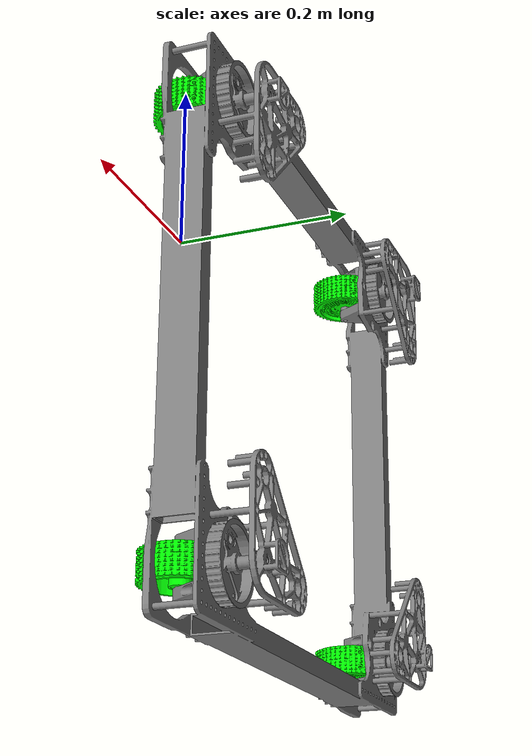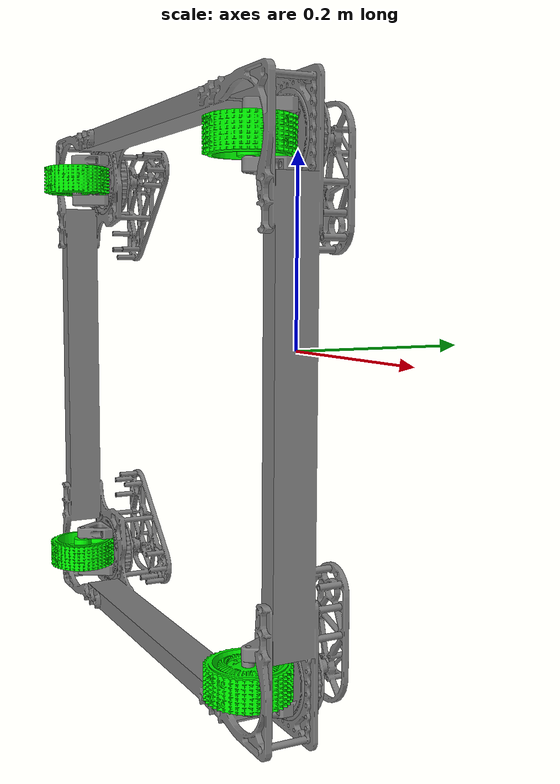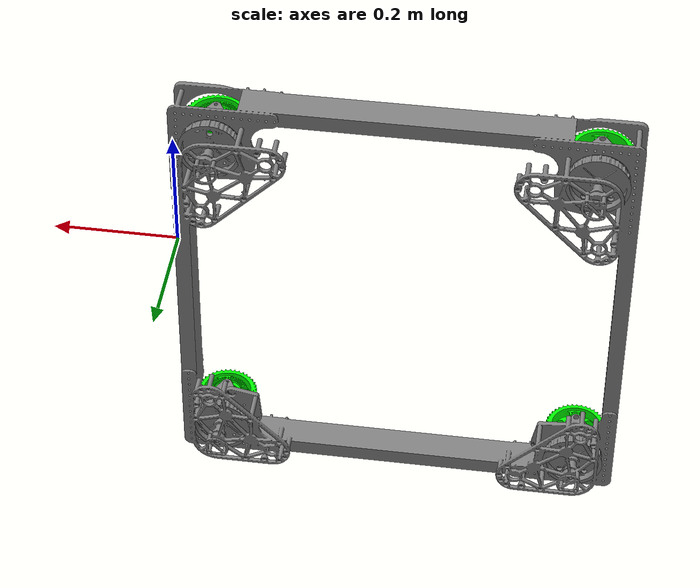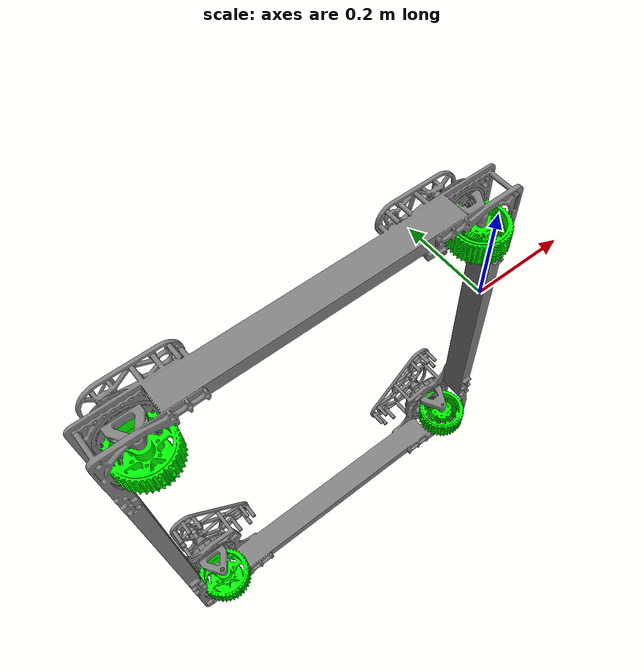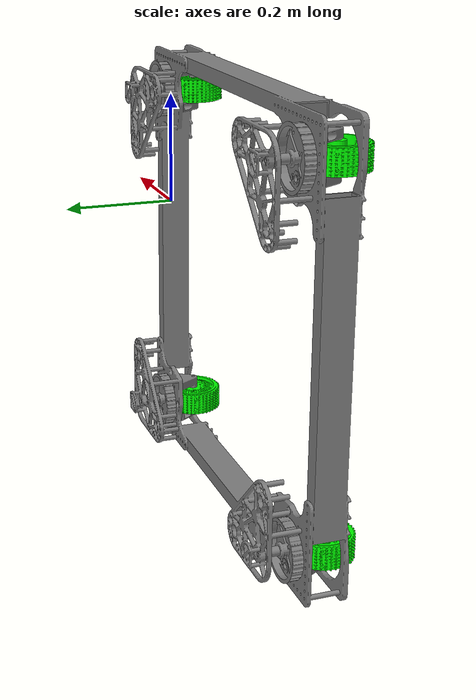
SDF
<?xml version="1.0" encoding="utf-8"?>
<sdf version="1.5">
  <model name="SimSwerveBotSqr">
    <pose>0 0 -0.0732265880524317 0 0 0</pose>
    <plugin name="clock" filename="libgz_clock.so">
      <topic>/gazebo/frc/time</topic>
    </plugin>
    <link name="Body">
      <gravity>1</gravity>
      <self_collide>0</self_collide>
      <pose>-0.361578521209738 0.0224477103221839 -0.000104141162104054 0 0 0</pose>
      <must_be_base_link>1</must_be_base_link>
      <velocity_decay>
        <linear>0</linear>
        <angular>0</angular>
      </velocity_decay>
      <inertial>
        <mass>3.33982230568499</mass>
        <pose>0 0 0 0 0 0</pose>
        <inertia>
          <ixx>0.239320162268621</ixx>
          <ixy>1.39476874278058E-06</ixy>
          <ixz>9.06608741982884E-05</ixz>
          <iyy>0.474255403798104</iyy>
          <iyz>6.69753093992132E-07</iyz>
          <izz>0.239337687183814</izz>
        </inertia>
      </inertial>
      <collision name="Body_collision">
        <pose>0.751642401990572 -0.0956742983746156 0.183415226520529 0 0 0</pose>
        <geometry>
          <mesh>
            <scale>1 1 1</scale>
            <uri>model://SimSwerveBotSqr/meshes/Body_col.STL</uri>
          </mesh>
        </geometry>
        <surface>
          <contact>
            <ode />
          </contact>
          <friction>
            <ode>
              <mu>0</mu>
              <mu2>0</mu2>
            </ode>
          </friction>
        </surface>
      </collision>
      <visual name="Body_visual">
        <pose>0.751642401990572 -0.0956742983746156 0.183415226520529 0 0 0</pose>
        <material>
          <ambient>0.501960784313725 0.501960784313725 0.501960784313725 1</ambient>
          <diffuse>0.501960784313725 0.501960784313725 0.501960784313725 1</diffuse>
        </material>
        <geometry>
          <mesh>
            <scale>1 1 1</scale>
            <uri>model://SimSwerveBotSqr/meshes/Body.STL</uri>
          </mesh>
        </geometry>
      </visual>
    </link>
    <link name="FRdrive">
      <gravity>1</gravity>
      <self_collide>0</self_collide>
      <pose>-0.0666704068227935 0.0213331240064611 0.295439736536125 0 0 0</pose>
      <must_be_base_link>0</must_be_base_link>
      <velocity_decay>
        <linear>0</linear>
        <angular>0</angular>
      </velocity_decay>
      <inertial>
        <mass>0.100976546506173</mass>
        <pose>0 0 0 0 0 0</pose>
        <inertia>
          <ixx>7.74573179066147E-05</ixx>
          <ixy>1.27177465600913E-08</ixy>
          <ixz>2.7611315167386E-07</ixz>
          <iyy>3.66618029242928E-05</iyy>
          <iyz>1.6872769730006E-06</iyz>
          <izz>4.07996742320813E-05</izz>
        </inertia>
      </inertial>
      <collision name="FRdrive_collision">
        <pose>0.456734287603628 -0.0945597120588928 -0.1121286511777 0 0 0</pose>
        <geometry>
          <mesh>
            <scale>1 1 1</scale>
            <uri>model://SimSwerveBotSqr/meshes/FRdrive_col.STL</uri>
          </mesh>
        </geometry>
        <surface>
          <contact>
            <ode />
          </contact>
          <friction>
            <ode>
              <mu>0</mu>
              <mu2>0</mu2>
            </ode>
          </friction>
        </surface>
      </collision>
      <visual name="FRdrive_visual">
        <pose>0.456734287603628 -0.0945597120588928 -0.1121286511777 0 0 0</pose>
        <material>
          <ambient>0.501960784313725 0.501960784313725 0.501960784313725 1</ambient>
          <diffuse>0.501960784313725 0.501960784313725 0.501960784313725 1</diffuse>
        </material>
        <geometry>
          <mesh>
            <scale>1 1 1</scale>
            <uri>model://SimSwerveBotSqr/meshes/FRdrive.STL</uri>
          </mesh>
        </geometry>
      </visual>
    </link>
    <joint name="Body-FRdrive" type="revolute">
      <parent>Body</parent>
      <child>FRdrive</child>
      <pose>-4.5931772064689E-06 4.16333634234434E-17 -0.000609236536125615 0 0 4.71238898038469</pose>
      <axis>
        <xyz>1 2.22044604925031E-16 0</xyz>
        <dynamics>
          <damping>0</damping>
          <friction>0</friction>
        </dynamics>
        <limit>
          <effort>1</effort>
        </limit>
      </axis>
    </joint>
    <link name="FRwheel">
      <gravity>1</gravity>
      <self_collide>0</self_collide>
      <pose>-0.0666751053477767 -0.0200407782960009 0.296484631380306 0 0 0</pose>
      <must_be_base_link>0</must_be_base_link>
      <velocity_decay>
        <linear>0</linear>
        <angular>0</angular>
      </velocity_decay>
      <inertial>
        <mass>0.123981366006224</mass>
        <pose>0 0 0 0 0 0</pose>
        <inertia>
          <ixx>3.88278352520207E-06</ixx>
          <ixy>2.45178744083236E-09</ixy>
          <ixz>3.03959796515161E-08</ixz>
          <iyy>3.86178892347243E-06</iyy>
          <iyz>1.19329957458855E-08</iyz>
          <izz>2.19913716679544E-08</izz>
        </inertia>
      </inertial>
      <collision name="FRwheel_collision">
        <pose>0.456738986128612 -0.0531858097564308 -0.113173546021881 0 0 0</pose>
        <geometry>
          <mesh>
            <scale>1 1 1</scale>
            <uri>model://SimSwerveBotSqr/meshes/FRwheel_col.STL</uri>
          </mesh>
        </geometry>
        <surface>
          <contact>
            <ode />
          </contact>
          <friction>
            <ode>
              <mu>0</mu>
              <mu2>0</mu2>
            </ode>
          </friction>
        </surface>
      </collision>
      <visual name="FRwheel_visual">
        <pose>0.456738986128612 -0.0531858097564308 -0.113173546021881 0 0 0</pose>
        <material>
          <ambient>0 1 0 1</ambient>
          <diffuse>0 1 0 1</diffuse>
        </material>
        <geometry>
          <mesh>
            <scale>1 1 1</scale>
            <uri>model://SimSwerveBotSqr/meshes/FRwheel.STL</uri>
          </mesh>
        </geometry>
      </visual>
    </link>
    <joint name="FRdrive-FRwheel" type="revolute">
      <parent>FRdrive</parent>
      <child>FRwheel</child>
      <pose>1.25638072462353E-05 0.000114295457558429 -9.46325307421558E-08 0 0 0</pose>
      <axis>
        <xyz>0.00753194032505162 -5.39495021367634E-16 0.99997163453517</xyz>
        <dynamics>
          <damping>0</damping>
          <friction>0</friction>
        </dynamics>
        <limit>
          <effort>1</effort>
        </limit>
      </axis>
    </joint>
    <link name="FLdrive">
      <gravity>1</gravity>
      <self_collide>0</self_collide>
      <pose>-0.0666783151978865 0.0213331240141264 -0.29422125516612 0 0 0</pose>
      <must_be_base_link>0</must_be_base_link>
      <velocity_decay>
        <linear>0</linear>
        <angular>0</angular>
      </velocity_decay>
      <inertial>
        <mass>0.100976546483737</mass>
        <pose>0 0 0 0 0 0</pose>
        <inertia>
          <ixx>7.74583090197222E-05</ixx>
          <ixy>9.18445214280645E-09</ixy>
          <ixz>1.99761999347222E-07</ixz>
          <iyy>3.66618029257748E-05</iyy>
          <iyz>1.6872999217516E-06</iyz>
          <izz>4.07986830758817E-05</izz>
        </inertia>
      </inertial>
      <collision name="FLdrive_collision">
        <pose>0.456742195978721 -0.0945597120665581 0.477532340524545 0 0 0</pose>
        <geometry>
          <mesh>
            <scale>1 1 1</scale>
            <uri>model://SimSwerveBotSqr/meshes/FLdrive_col.STL</uri>
          </mesh>
        </geometry>
        <surface>
          <contact>
            <ode />
          </contact>
          <friction>
            <ode>
              <mu>0</mu>
              <mu2>0</mu2>
            </ode>
          </friction>
        </surface>
      </collision>
      <visual name="FLdrive_visual">
        <pose>0.456742195978721 -0.0945597120665581 0.477532340524545 0 0 0</pose>
        <material>
          <ambient>0.501960784313725 0.501960784313725 0.501960784313725 1</ambient>
          <diffuse>0.501960784313725 0.501960784313725 0.501960784313725 1</diffuse>
        </material>
        <geometry>
          <mesh>
            <scale>1 1 1</scale>
            <uri>model://SimSwerveBotSqr/meshes/FLdrive.STL</uri>
          </mesh>
        </geometry>
      </visual>
    </link>
    <joint name="Body-FLdrive" type="revolute">
      <parent>Body</parent>
      <child>FLdrive</child>
      <pose>3.31519788482337E-06 1.38777878078145E-17 -0.00060924483387842 0 0 4.71238898038469</pose>
      <axis>
        <xyz>1 2.22044604925031E-16 0</xyz>
        <dynamics>
          <damping>0</damping>
          <friction>0</friction>
        </dynamics>
        <limit>
          <effort>1</effort>
        </limit>
      </axis>
    </joint>
    <link name="FLwheel">
      <gravity>1</gravity>
      <self_collide>0</self_collide>
      <pose>-0.0666500588503373 -0.0200363391768113 -0.293176256117941 0 0 0</pose>
      <must_be_base_link>0</must_be_base_link>
      <velocity_decay>
        <linear>0</linear>
        <angular>0</angular>
      </velocity_decay>
      <inertial>
        <mass>0.123981363237599</mass>
        <pose>0 0 0 0 0 0</pose>
        <inertia>
          <ixx>3.88123093123918E-06</ixx>
          <ixy>6.20012767169892E-09</ixy>
          <ixz>2.45786304025844E-08</ixz>
          <iyy>3.863426161541E-06</iyy>
          <iyz>1.14534871755363E-08</iyz>
          <izz>2.19057994070369E-08</izz>
        </inertia>
      </inertial>
      <collision name="FLwheel_collision">
        <pose>0.456713939631172 -0.0531902488756204 0.476487341476367 0 0 0</pose>
        <geometry>
          <mesh>
            <scale>1 1 1</scale>
            <uri>model://SimSwerveBotSqr/meshes/FLwheel_col.STL</uri>
          </mesh>
        </geometry>
        <surface>
          <contact>
            <ode />
          </contact>
          <friction>
            <ode>
              <mu>0</mu>
              <mu2>0</mu2>
            </ode>
          </friction>
        </surface>
      </collision>
      <visual name="FLwheel_visual">
        <pose>0.456713939631172 -0.0531902488756204 0.476487341476367 0 0 0</pose>
        <material>
          <ambient>0 1 0 1</ambient>
          <diffuse>0 1 0 1</diffuse>
        </material>
        <geometry>
          <mesh>
            <scale>1 1 1</scale>
            <uri>model://SimSwerveBotSqr/meshes/FLwheel.STL</uri>
          </mesh>
        </geometry>
      </visual>
    </link>
    <joint name="FLdrive-FLwheel" type="revolute">
      <parent>FLdrive</parent>
      <child>FLwheel</child>
      <pose>-3.3953405144671E-05 0.000109856338368894 -1.84997501984085E-07 0 0 0</pose>
      <axis>
        <xyz>-0.00544848904353577 5.40638311670226E-16 0.999985156873412</xyz>
        <dynamics>
          <damping>0</damping>
          <friction>0</friction>
        </dynamics>
        <limit>
          <effort>1</effort>
        </limit>
      </axis>
    </joint>
    <link name="BRdrive">
      <gravity>1</gravity>
      <self_collide>0</self_collide>
      <pose>-0.656522966927376 0.021333123817192 0.294221257752678 0 0 0</pose>
      <must_be_base_link>0</must_be_base_link>
      <velocity_decay>
        <linear>0</linear>
        <angular>0</angular>
      </velocity_decay>
      <inertial>
        <mass>0.100976547280499</mass>
        <pose>0 0 0 0 0 0</pose>
        <inertia>
          <ixx>7.74580424600811E-05</ixx>
          <ixy>1.02735443455842E-08</ixy>
          <ixz>2.23017306682451E-07</ixz>
          <iyy>3.66618040809973E-05</iyy>
          <iyz>1.68729289696503E-06</iyz>
          <izz>4.07989517512729E-05</izz>
        </inertia>
      </inertial>
      <collision name="BRdrive_collision">
        <pose>1.04658684770821 -0.0945597118696237 -0.110910172394253 0 0 0</pose>
        <geometry>
          <mesh>
            <scale>1 1 1</scale>
            <uri>model://SimSwerveBotSqr/meshes/BRdrive_col.STL</uri>
          </mesh>
        </geometry>
        <surface>
          <contact>
            <ode />
          </contact>
          <friction>
            <ode>
              <mu>0</mu>
              <mu2>0</mu2>
            </ode>
          </friction>
        </surface>
      </collision>
      <visual name="BRdrive_visual">
        <pose>1.04658684770821 -0.0945597118696237 -0.110910172394253 0 0 0</pose>
        <material>
          <ambient>0.501960784313725 0.501960784313725 0.501960784313725 1</ambient>
          <diffuse>0.501960784313725 0.501960784313725 0.501960784313725 1</diffuse>
        </material>
        <geometry>
          <mesh>
            <scale>1 1 1</scale>
            <uri>model://SimSwerveBotSqr/meshes/BRdrive.STL</uri>
          </mesh>
        </geometry>
      </visual>
    </link>
    <joint name="Body-BRdrive" type="revolute">
      <parent>Body</parent>
      <child>BRdrive</child>
      <pose>3.71059319737022E-06 0 0.000609242247312 0 0 4.71238898038469</pose>
      <axis>
        <xyz>1 2.22044604925031E-16 0</xyz>
        <dynamics>
          <damping>0</damping>
          <friction>0</friction>
        </dynamics>
        <limit>
          <effort>1</effort>
        </limit>
      </axis>
    </joint>
    <link name="BRwheel">
      <gravity>1</gravity>
      <self_collide>0</self_collide>
      <pose>-0.656516755128661 -0.0200407782968191 0.293176370684932 0 0 0</pose>
      <must_be_base_link>0</must_be_base_link>
      <velocity_decay>
        <linear>0</linear>
        <angular>0</angular>
      </velocity_decay>
      <inertial>
        <mass>0.123981364545114</mass>
        <pose>0 0 0 0 0 0</pose>
        <inertia>
          <ixx>3.88286314957008E-06</ixx>
          <ixy>2.43450099756806E-09</ixy>
          <ixz>2.4803853487311E-08</ixz>
          <iyy>3.86178859585594E-06</iyy>
          <iyz>1.19365329137082E-08</iyz>
          <izz>2.19114196808335E-08</izz>
        </inertia>
      </inertial>
      <collision name="BRwheel_collision">
        <pose>1.0465806359095 -0.0531858097556126 -0.109865285326507 0 0 0</pose>
        <geometry>
          <mesh>
            <scale>1 1 1</scale>
            <uri>model://SimSwerveBotSqr/meshes/BRwheel_col.STL</uri>
          </mesh>
        </geometry>
        <surface>
          <contact>
            <ode />
          </contact>
          <friction>
            <ode>
              <mu>0</mu>
              <mu2>0</mu2>
            </ode>
          </friction>
        </surface>
      </collision>
      <visual name="BRwheel_visual">
        <pose>1.0465806359095 -0.0531858097556126 -0.109865285326507 0 0 0</pose>
        <material>
          <ambient>0 1 0 1</ambient>
          <diffuse>0 1 0 1</diffuse>
        </material>
        <geometry>
          <mesh>
            <scale>1 1 1</scale>
            <uri>model://SimSwerveBotSqr/meshes/BRwheel.STL</uri>
          </mesh>
        </geometry>
      </visual>
    </link>
    <joint name="BRdrive-BRwheel" type="revolute">
      <parent>BRdrive</parent>
      <child>BRwheel</child>
      <pose>-1.25639304104919E-05 0.000114295458376761 7.64349052384539E-08 0 0 0</pose>
      <axis>
        <xyz>-0.0060835652850478 5.43691585820102E-16 -0.999981494945493</xyz>
        <dynamics>
          <damping>0</damping>
          <friction>0</friction>
        </dynamics>
        <limit>
          <effort>1</effort>
        </limit>
      </axis>
    </joint>
    <link name="BLdrive">
      <gravity>1</gravity>
      <self_collide>0</self_collide>
      <pose>-0.656523849354794 0.0213331238156132 -0.295820736234577 0 0 0</pose>
      <must_be_base_link>0</must_be_base_link>
      <velocity_decay>
        <linear>0</linear>
        <angular>0</angular>
      </velocity_decay>
      <inertial>
        <mass>0.100976547285612</mass>
        <pose>0 0 0 0 0 0</pose>
        <inertia>
          <ixx>7.74573195085064E-05</ixx>
          <ixy>1.27174221051555E-08</ixy>
          <ixz>2.76113644221775E-07</ixz>
          <iyy>3.66618040711778E-05</iyy>
          <iyz>1.68727624671616E-06</iyz>
          <izz>4.07996747017973E-05</izz>
        </inertia>
      </inertial>
      <collision name="BLdrive_collision">
        <pose>1.04658773013563 -0.0945597118680448 0.479131821593002 0 0 0</pose>
        <geometry>
          <mesh>
            <scale>1 1 1</scale>
            <uri>model://SimSwerveBotSqr/meshes/BLdrive_col.STL</uri>
          </mesh>
        </geometry>
        <surface>
          <contact>
            <ode />
          </contact>
          <friction>
            <ode>
              <mu>0</mu>
              <mu2>0</mu2>
            </ode>
          </friction>
        </surface>
      </collision>
      <visual name="BLdrive_visual">
        <pose>1.04658773013563 -0.0945597118680448 0.479131821593002 0 0 0</pose>
        <material>
          <ambient>0.501960784313725 0.501960784313725 0.501960784313725 1</ambient>
          <diffuse>0.501960784313725 0.501960784313725 0.501960784313725 1</diffuse>
        </material>
        <geometry>
          <mesh>
            <scale>1 1 1</scale>
            <uri>model://SimSwerveBotSqr/meshes/BLdrive.STL</uri>
          </mesh>
        </geometry>
      </visual>
    </link>
    <joint name="Body-BLdrive" type="revolute">
      <parent>Body</parent>
      <child>BLdrive</child>
      <pose>4.59302061250888E-06 0 0.000609236234577704 0 0 4.71238898038469</pose>
      <axis>
        <xyz>1 2.22044604925031E-16 0</xyz>
        <dynamics>
          <damping>0</damping>
          <friction>0</friction>
        </dynamics>
        <limit>
          <effort>1</effort>
        </limit>
      </axis>
    </joint>
    <link name="BLwheel">
      <gravity>1</gravity>
      <self_collide>0</self_collide>
      <pose>-0.656519150986405 -0.0200407782960008 -0.296865631380304 0 0 0</pose>
      <must_be_base_link>0</must_be_base_link>
      <velocity_decay>
        <linear>0</linear>
        <angular>0</angular>
      </velocity_decay>
      <inertial>
        <mass>0.123981366006225</mass>
        <pose>0 0 0 0 0 0</pose>
        <inertia>
          <ixx>3.88278352520216E-06</ixx>
          <ixy>2.45178744082868E-09</ixy>
          <ixz>3.03959796515589E-08</ixz>
          <iyy>3.86178892347249E-06</iyy>
          <iyz>1.19329957459292E-08</iyz>
          <izz>2.19913716679779E-08</izz>
        </inertia>
      </inertial>
      <collision name="BLwheel_collision">
        <pose>1.04658303176724 -0.0531858097564309 0.48017671673873 0 0 0</pose>
        <geometry>
          <mesh>
            <scale>1 1 1</scale>
            <uri>model://SimSwerveBotSqr/meshes/BLwheel_col.STL</uri>
          </mesh>
        </geometry>
        <surface>
          <contact>
            <ode />
          </contact>
          <friction>
            <ode>
              <mu>0</mu>
              <mu2>0</mu2>
            </ode>
          </friction>
        </surface>
      </collision>
      <visual name="BLwheel_visual">
        <pose>1.04658303176724 -0.0531858097564309 0.48017671673873 0 0 0</pose>
        <material>
          <ambient>0 1 0 1</ambient>
          <diffuse>0 1 0 1</diffuse>
        </material>
        <geometry>
          <mesh>
            <scale>1 1 1</scale>
            <uri>model://SimSwerveBotSqr/meshes/BLwheel.STL</uri>
          </mesh>
        </geometry>
      </visual>
    </link>
    <joint name="BLdrive-BLwheel" type="revolute">
      <parent>BLdrive</parent>
      <child>BLwheel</child>
      <pose>-1.25638072461243E-05 0.000114295457558505 9.46325307005225E-08 0 0 0</pose>
      <axis>
        <xyz>-0.0075319403250586 -5.39495021367634E-16 -0.99997163453517</xyz>
        <dynamics>
          <damping>0</damping>
          <friction>0</friction>
        </dynamics>
        <limit>
          <effort>1</effort>
        </limit>
      </axis>
    </joint>
  </model>
</sdf>
